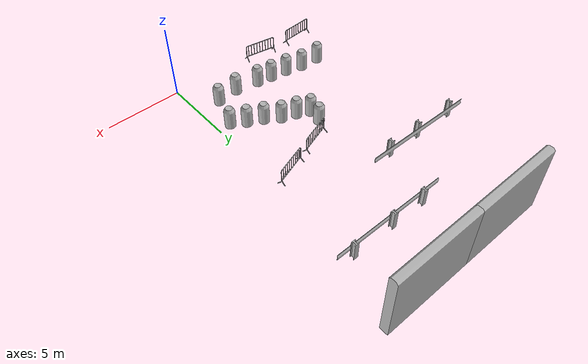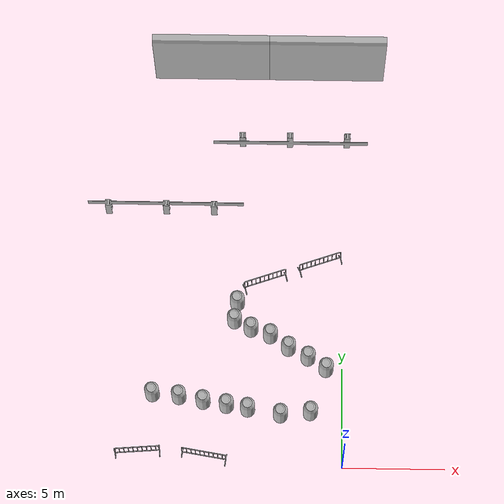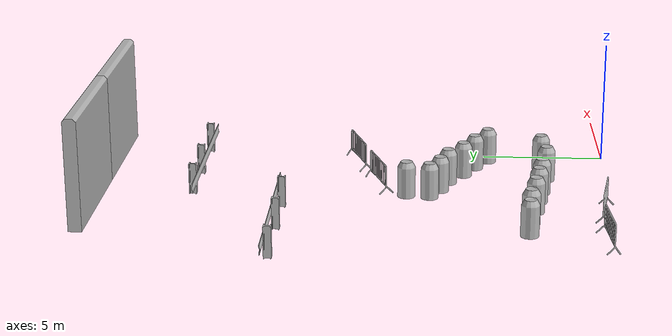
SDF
<sdf version="1.7">
 <world name="default">
  <model name="aws_robomaker_racetrack_CrashworthBucket_01_00">
   <frame name="aws_CrashworthBucket_01::__model__" attached_to="aws_CrashworthBucket_01::body">
    <pose relative_to="__model__">0 0 0 0 -0 0</pose>
   </frame>
   <link name="aws_CrashworthBucket_01::body">
    <pose relative_to="aws_CrashworthBucket_01::__model__">0 0 0 0 -0 0</pose>
    <inertial>
     <mass>5</mass>
     <inertia><ixx>1</ixx><ixy>0</ixy><ixz>0</ixz><iyy>1</iyy><iyz>0</iyz><izz>1</izz></inertia>
    </inertial>
    <visual name="visual">
     <geometry>
      <mesh>
       <uri>file://models/aws_robomaker_racetrack_CrashworthBucket_01/meshes/aws_CrashworthBucket_01_visual.DAE</uri>
      </mesh>
     </geometry>
     <material><shader type="pixel"><normal_map>__default__</normal_map></shader></material>
     <meta><layer>0</layer></meta>
    </visual>
    <collision name="collision_0">
     <geometry>
      <mesh>
       <uri>file://models/aws_robomaker_racetrack_CrashworthBucket_01/meshes/aws_CrashworthBucket_01_collision.DAE</uri>
       <scale>1 1 1</scale>
      </mesh>
     </geometry>
     <surface>
      <friction>
       <ode><mu>1</mu><mu2>1</mu2><fdir1>0 0 0</fdir1><slip1>0</slip1><slip2>0</slip2></ode>
       <torsional>
        <coefficient>1</coefficient>
        <patch_radius>0</patch_radius>
        <surface_radius>0</surface_radius>
        <use_patch_radius>1</use_patch_radius>
        <ode><slip>0</slip></ode>
       </torsional>
      </friction>
      <bounce><restitution_coefficient>0</restitution_coefficient><threshold>1e+06</threshold></bounce>
      <contact>
       <collide_without_contact>0</collide_without_contact>
       <collide_without_contact_bitmask>1</collide_without_contact_bitmask>
       <collide_bitmask>1</collide_bitmask>
       <ode>
        <soft_cfm>0</soft_cfm>
        <soft_erp>0.2</soft_erp>
        <kp>1e+13</kp>
        <kd>1</kd>
        <max_vel>0.01</max_vel>
        <min_depth>0</min_depth>
       </ode>
       <bullet>
        <split_impulse>1</split_impulse>
        <split_impulse_penetration_threshold>-0.01</split_impulse_penetration_threshold>
        <soft_cfm>0</soft_cfm>
        <soft_erp>0.2</soft_erp>
        <kp>1e+13</kp>
        <kd>1</kd>
       </bullet>
      </contact>
     </surface>
    </collision>
   </link>
   <static>1</static>
   <pose>-1.69098 5.45143 0.054 0 -0 0</pose>
  </model>
  <model name="aws_robomaker_racetrack_CrashworthBucket_01_01">
   <frame name="aws_CrashworthBucket_01::__model__" attached_to="aws_CrashworthBucket_01::body">
    <pose relative_to="__model__">0 0 0 0 -0 0</pose>
   </frame>
   <link name="aws_CrashworthBucket_01::body">
    <pose relative_to="aws_CrashworthBucket_01::__model__">0 0 0 0 -0 0</pose>
    <inertial>
     <mass>5</mass>
     <inertia><ixx>1</ixx><ixy>0</ixy><ixz>0</ixz><iyy>1</iyy><iyz>0</iyz><izz>1</izz></inertia>
    </inertial>
    <visual name="visual">
     <geometry>
      <mesh>
       <uri>file://models/aws_robomaker_racetrack_CrashworthBucket_01/meshes/aws_CrashworthBucket_01_visual.DAE</uri>
      </mesh>
     </geometry>
     <material><shader type="pixel"><normal_map>__default__</normal_map></shader></material>
     <meta><layer>0</layer></meta>
    </visual>
    <collision name="collision_0">
     <geometry>
      <mesh>
       <uri>file://models/aws_robomaker_racetrack_CrashworthBucket_01/meshes/aws_CrashworthBucket_01_collision.DAE</uri>
       <scale>1 1 1</scale>
      </mesh>
     </geometry>
     <surface>
      <friction>
       <ode><mu>1</mu><mu2>1</mu2><fdir1>0 0 0</fdir1><slip1>0</slip1><slip2>0</slip2></ode>
       <torsional>
        <coefficient>1</coefficient>
        <patch_radius>0</patch_radius>
        <surface_radius>0</surface_radius>
        <use_patch_radius>1</use_patch_radius>
        <ode><slip>0</slip></ode>
       </torsional>
      </friction>
      <bounce><restitution_coefficient>0</restitution_coefficient><threshold>1e+06</threshold></bounce>
      <contact>
       <collide_without_contact>0</collide_without_contact>
       <collide_without_contact_bitmask>1</collide_without_contact_bitmask>
       <collide_bitmask>1</collide_bitmask>
       <ode>
        <soft_cfm>0</soft_cfm>
        <soft_erp>0.2</soft_erp>
        <kp>1e+13</kp>
        <kd>1</kd>
        <max_vel>0.01</max_vel>
        <min_depth>0</min_depth>
       </ode>
       <bullet>
        <split_impulse>1</split_impulse>
        <split_impulse_penetration_threshold>-0.01</split_impulse_penetration_threshold>
        <soft_cfm>0</soft_cfm>
        <soft_erp>0.2</soft_erp>
        <kp>1e+13</kp>
        <kd>1</kd>
       </bullet>
      </contact>
     </surface>
    </collision>
   </link>
   <static>1</static>
   <pose>-2.65666 5.94023 0.054 0 -0 0</pose>
  </model>
  <model name="aws_robomaker_racetrack_CrashworthBucket_01_02">
   <frame name="aws_CrashworthBucket_01::__model__" attached_to="aws_CrashworthBucket_01::body">
    <pose relative_to="__model__">0 0 0 0 -0 0</pose>
   </frame>
   <link name="aws_CrashworthBucket_01::body">
    <pose relative_to="aws_CrashworthBucket_01::__model__">0 0 0 0 -0 0</pose>
    <inertial>
     <mass>5</mass>
     <inertia><ixx>1</ixx><ixy>0</ixy><ixz>0</ixz><iyy>1</iyy><iyz>0</iyz><izz>1</izz></inertia>
    </inertial>
    <visual name="visual">
     <geometry>
      <mesh>
       <uri>file://models/aws_robomaker_racetrack_CrashworthBucket_01/meshes/aws_CrashworthBucket_01_visual.DAE</uri>
      </mesh>
     </geometry>
     <material><shader type="pixel"><normal_map>__default__</normal_map></shader></material>
     <meta><layer>0</layer></meta>
    </visual>
    <collision name="collision_0">
     <geometry>
      <mesh>
       <uri>file://models/aws_robomaker_racetrack_CrashworthBucket_01/meshes/aws_CrashworthBucket_01_collision.DAE</uri>
       <scale>1 1 1</scale>
      </mesh>
     </geometry>
     <surface>
      <friction>
       <ode><mu>1</mu><mu2>1</mu2><fdir1>0 0 0</fdir1><slip1>0</slip1><slip2>0</slip2></ode>
       <torsional>
        <coefficient>1</coefficient>
        <patch_radius>0</patch_radius>
        <surface_radius>0</surface_radius>
        <use_patch_radius>1</use_patch_radius>
        <ode><slip>0</slip></ode>
       </torsional>
      </friction>
      <bounce><restitution_coefficient>0</restitution_coefficient><threshold>1e+06</threshold></bounce>
      <contact>
       <collide_without_contact>0</collide_without_contact>
       <collide_without_contact_bitmask>1</collide_without_contact_bitmask>
       <collide_bitmask>1</collide_bitmask>
       <ode>
        <soft_cfm>0</soft_cfm>
        <soft_erp>0.2</soft_erp>
        <kp>1e+13</kp>
        <kd>1</kd>
        <max_vel>0.01</max_vel>
        <min_depth>0</min_depth>
       </ode>
       <bullet>
        <split_impulse>1</split_impulse>
        <split_impulse_penetration_threshold>-0.01</split_impulse_penetration_threshold>
        <soft_cfm>0</soft_cfm>
        <soft_erp>0.2</soft_erp>
        <kp>1e+13</kp>
        <kd>1</kd>
       </bullet>
      </contact>
     </surface>
    </collision>
   </link>
   <static>1</static>
   <pose>-6.79958 3.18138 0.054 0 -0 0</pose>
  </model>
  <model name="aws_robomaker_racetrack_CrashworthBucket_01_21">
   <frame name="aws_CrashworthBucket_01::__model__" attached_to="aws_CrashworthBucket_01::body">
    <pose relative_to="__model__">0 0 0 0 -0 0</pose>
   </frame>
   <link name="aws_CrashworthBucket_01::body">
    <pose relative_to="aws_CrashworthBucket_01::__model__">0 0 0 0 -0 0</pose>
    <inertial>
     <mass>5</mass>
     <inertia><ixx>1</ixx><ixy>0</ixy><ixz>0</ixz><iyy>1</iyy><iyz>0</iyz><izz>1</izz></inertia>
    </inertial>
    <visual name="visual">
     <geometry>
      <mesh>
       <uri>file://models/aws_robomaker_racetrack_CrashworthBucket_01/meshes/aws_CrashworthBucket_01_visual.DAE</uri>
      </mesh>
     </geometry>
     <material><shader type="pixel"><normal_map>__default__</normal_map></shader></material>
     <meta><layer>0</layer></meta>
    </visual>
    <collision name="collision_0">
     <geometry>
      <mesh>
       <uri>file://models/aws_robomaker_racetrack_CrashworthBucket_01/meshes/aws_CrashworthBucket_01_collision.DAE</uri>
       <scale>1 1 1</scale>
      </mesh>
     </geometry>
     <surface>
      <friction>
       <ode><mu>1</mu><mu2>1</mu2><fdir1>0 0 0</fdir1><slip1>0</slip1><slip2>0</slip2></ode>
       <torsional>
        <coefficient>1</coefficient>
        <patch_radius>0</patch_radius>
        <surface_radius>0</surface_radius>
        <use_patch_radius>1</use_patch_radius>
        <ode><slip>0</slip></ode>
       </torsional>
      </friction>
      <bounce><restitution_coefficient>0</restitution_coefficient><threshold>1e+06</threshold></bounce>
      <contact>
       <collide_without_contact>0</collide_without_contact>
       <collide_without_contact_bitmask>1</collide_without_contact_bitmask>
       <collide_bitmask>1</collide_bitmask>
       <ode>
        <soft_cfm>0</soft_cfm>
        <soft_erp>0.2</soft_erp>
        <kp>1e+13</kp>
        <kd>1</kd>
        <max_vel>0.01</max_vel>
        <min_depth>0</min_depth>
       </ode>
       <bullet>
        <split_impulse>1</split_impulse>
        <split_impulse_penetration_threshold>-0.01</split_impulse_penetration_threshold>
        <soft_cfm>0</soft_cfm>
        <soft_erp>0.2</soft_erp>
        <kp>1e+13</kp>
        <kd>1</kd>
       </bullet>
      </contact>
     </surface>
    </collision>
   </link>
   <static>1</static>
   <pose>-4.61418 2.82739 0.054 0 -0 0</pose>
  </model>
  <model name="aws_robomaker_racetrack_CrashworthBucket_01_24">
   <frame name="aws_CrashworthBucket_01::__model__" attached_to="aws_CrashworthBucket_01::body">
    <pose relative_to="__model__">0 0 0 0 -0 0</pose>
   </frame>
   <link name="aws_CrashworthBucket_01::body">
    <pose relative_to="aws_CrashworthBucket_01::__model__">0 0 0 0 -0 0</pose>
    <inertial>
     <mass>5</mass>
     <inertia><ixx>1</ixx><ixy>0</ixy><ixz>0</ixz><iyy>1</iyy><iyz>0</iyz><izz>1</izz></inertia>
    </inertial>
    <visual name="visual">
     <geometry>
      <mesh>
       <uri>file://models/aws_robomaker_racetrack_CrashworthBucket_01/meshes/aws_CrashworthBucket_01_visual.DAE</uri>
      </mesh>
     </geometry>
     <material><shader type="pixel"><normal_map>__default__</normal_map></shader></material>
     <meta><layer>0</layer></meta>
    </visual>
    <collision name="collision_0">
     <geometry>
      <mesh>
       <uri>file://models/aws_robomaker_racetrack_CrashworthBucket_01/meshes/aws_CrashworthBucket_01_collision.DAE</uri>
       <scale>1 1 1</scale>
      </mesh>
     </geometry>
     <surface>
      <friction>
       <ode><mu>1</mu><mu2>1</mu2><fdir1>0 0 0</fdir1><slip1>0</slip1><slip2>0</slip2></ode>
       <torsional>
        <coefficient>1</coefficient>
        <patch_radius>0</patch_radius>
        <surface_radius>0</surface_radius>
        <use_patch_radius>1</use_patch_radius>
        <ode><slip>0</slip></ode>
       </torsional>
      </friction>
      <bounce><restitution_coefficient>0</restitution_coefficient><threshold>1e+06</threshold></bounce>
      <contact>
       <collide_without_contact>0</collide_without_contact>
       <collide_without_contact_bitmask>1</collide_without_contact_bitmask>
       <collide_bitmask>1</collide_bitmask>
       <ode>
        <soft_cfm>0</soft_cfm>
        <soft_erp>0.2</soft_erp>
        <kp>1e+13</kp>
        <kd>1</kd>
        <max_vel>0.01</max_vel>
        <min_depth>0</min_depth>
       </ode>
       <bullet>
        <split_impulse>1</split_impulse>
        <split_impulse_penetration_threshold>-0.01</split_impulse_penetration_threshold>
        <soft_cfm>0</soft_cfm>
        <soft_erp>0.2</soft_erp>
        <kp>1e+13</kp>
        <kd>1</kd>
       </bullet>
      </contact>
     </surface>
    </collision>
   </link>
   <static>1</static>
   <pose>-7.98711 3.42263 0 0 -0 0</pose>
  </model>
  <model name="aws_robomaker_racetrack_CrashworthBucket_01_50">
   <frame name="aws_CrashworthBucket_01::__model__" attached_to="aws_CrashworthBucket_01::body">
    <pose relative_to="__model__">0 0 0 0 -0 0</pose>
   </frame>
   <link name="aws_CrashworthBucket_01::body">
    <pose relative_to="aws_CrashworthBucket_01::__model__">0 0 0 0 -0 0</pose>
    <inertial>
     <mass>5</mass>
     <inertia><ixx>1</ixx><ixy>0</ixy><ixz>0</ixz><iyy>1</iyy><iyz>0</iyz><izz>1</izz></inertia>
    </inertial>
    <visual name="visual">
     <geometry>
      <mesh>
       <uri>file://models/aws_robomaker_racetrack_CrashworthBucket_01/meshes/aws_CrashworthBucket_01_visual.DAE</uri>
      </mesh>
     </geometry>
     <material><shader type="pixel"><normal_map>__default__</normal_map></shader></material>
     <meta><layer>0</layer></meta>
    </visual>
    <collision name="collision_0">
     <geometry>
      <mesh>
       <uri>file://models/aws_robomaker_racetrack_CrashworthBucket_01/meshes/aws_CrashworthBucket_01_collision.DAE</uri>
       <scale>1 1 1</scale>
      </mesh>
     </geometry>
     <surface>
      <friction>
       <ode><mu>1</mu><mu2>1</mu2><fdir1>0 0 0</fdir1><slip1>0</slip1><slip2>0</slip2></ode>
       <torsional>
        <coefficient>1</coefficient>
        <patch_radius>0</patch_radius>
        <surface_radius>0</surface_radius>
        <use_patch_radius>1</use_patch_radius>
        <ode><slip>0</slip></ode>
       </torsional>
      </friction>
      <bounce><restitution_coefficient>0</restitution_coefficient><threshold>1e+06</threshold></bounce>
      <contact>
       <collide_without_contact>0</collide_without_contact>
       <collide_without_contact_bitmask>1</collide_without_contact_bitmask>
       <collide_bitmask>1</collide_bitmask>
       <ode>
        <soft_cfm>0</soft_cfm>
        <soft_erp>0.2</soft_erp>
        <kp>1e+13</kp>
        <kd>1</kd>
        <max_vel>0.01</max_vel>
        <min_depth>0</min_depth>
       </ode>
       <bullet>
        <split_impulse>1</split_impulse>
        <split_impulse_penetration_threshold>-0.01</split_impulse_penetration_threshold>
        <soft_cfm>0</soft_cfm>
        <soft_erp>0.2</soft_erp>
        <kp>1e+13</kp>
        <kd>1</kd>
       </bullet>
      </contact>
     </surface>
    </collision>
   </link>
   <static>1</static>
   <pose>-3.56077 6.57141 0.054 0 -0 0</pose>
  </model>
  <model name="aws_robomaker_racetrack_CrashworthBucket_01_52">
   <frame name="aws_CrashworthBucket_01::__model__" attached_to="aws_CrashworthBucket_01::body">
    <pose relative_to="__model__">0 0 0 0 -0 0</pose>
   </frame>
   <link name="aws_CrashworthBucket_01::body">
    <pose relative_to="aws_CrashworthBucket_01::__model__">0 0 0 0 -0 0</pose>
    <inertial>
     <mass>5</mass>
     <inertia><ixx>1</ixx><ixy>0</ixy><ixz>0</ixz><iyy>1</iyy><iyz>0</iyz><izz>1</izz></inertia>
    </inertial>
    <visual name="visual">
     <geometry>
      <mesh>
       <uri>file://models/aws_robomaker_racetrack_CrashworthBucket_01/meshes/aws_CrashworthBucket_01_visual.DAE</uri>
      </mesh>
     </geometry>
     <material><shader type="pixel"><normal_map>__default__</normal_map></shader></material>
     <meta><layer>0</layer></meta>
    </visual>
    <collision name="collision_0">
     <geometry>
      <mesh>
       <uri>file://models/aws_robomaker_racetrack_CrashworthBucket_01/meshes/aws_CrashworthBucket_01_collision.DAE</uri>
       <scale>1 1 1</scale>
      </mesh>
     </geometry>
     <surface>
      <friction>
       <ode><mu>1</mu><mu2>1</mu2><fdir1>0 0 0</fdir1><slip1>0</slip1><slip2>0</slip2></ode>
       <torsional>
        <coefficient>1</coefficient>
        <patch_radius>0</patch_radius>
        <surface_radius>0</surface_radius>
        <use_patch_radius>1</use_patch_radius>
        <ode><slip>0</slip></ode>
       </torsional>
      </friction>
      <bounce><restitution_coefficient>0</restitution_coefficient><threshold>1e+06</threshold></bounce>
      <contact>
       <collide_without_contact>0</collide_without_contact>
       <collide_without_contact_bitmask>1</collide_without_contact_bitmask>
       <collide_bitmask>1</collide_bitmask>
       <ode>
        <soft_cfm>0</soft_cfm>
        <soft_erp>0.2</soft_erp>
        <kp>1e+13</kp>
        <kd>1</kd>
        <max_vel>0.01</max_vel>
        <min_depth>0</min_depth>
       </ode>
       <bullet>
        <split_impulse>1</split_impulse>
        <split_impulse_penetration_threshold>-0.01</split_impulse_penetration_threshold>
        <soft_cfm>0</soft_cfm>
        <soft_erp>0.2</soft_erp>
        <kp>1e+13</kp>
        <kd>1</kd>
       </bullet>
      </contact>
     </surface>
    </collision>
   </link>
   <static>1</static>
   <pose>-0.803385 4.88656 0.054 0 -0 0</pose>
  </model>
  <model name="aws_robomaker_racetrack_CrashworthBucket_01_55">
   <frame name="aws_CrashworthBucket_01::__model__" attached_to="aws_CrashworthBucket_01::body">
    <pose relative_to="__model__">0 0 0 0 -0 0</pose>
   </frame>
   <link name="aws_CrashworthBucket_01::body">
    <pose relative_to="aws_CrashworthBucket_01::__model__">0 0 0 0 -0 0</pose>
    <inertial>
     <mass>5</mass>
     <inertia><ixx>1</ixx><ixy>0</ixy><ixz>0</ixz><iyy>1</iyy><iyz>0</iyz><izz>1</izz></inertia>
    </inertial>
    <visual name="visual">
     <geometry>
      <mesh>
       <uri>file://models/aws_robomaker_racetrack_CrashworthBucket_01/meshes/aws_CrashworthBucket_01_visual.DAE</uri>
      </mesh>
     </geometry>
     <material><shader type="pixel"><normal_map>__default__</normal_map></shader></material>
     <meta><layer>0</layer></meta>
    </visual>
    <collision name="collision_0">
     <geometry>
      <mesh>
       <uri>file://models/aws_robomaker_racetrack_CrashworthBucket_01/meshes/aws_CrashworthBucket_01_collision.DAE</uri>
       <scale>1 1 1</scale>
      </mesh>
     </geometry>
     <surface>
      <friction>
       <ode><mu>1</mu><mu2>1</mu2><fdir1>0 0 0</fdir1><slip1>0</slip1><slip2>0</slip2></ode>
       <torsional>
        <coefficient>1</coefficient>
        <patch_radius>0</patch_radius>
        <surface_radius>0</surface_radius>
        <use_patch_radius>1</use_patch_radius>
        <ode><slip>0</slip></ode>
       </torsional>
      </friction>
      <bounce><restitution_coefficient>0</restitution_coefficient><threshold>1e+06</threshold></bounce>
      <contact>
       <collide_without_contact>0</collide_without_contact>
       <collide_without_contact_bitmask>1</collide_without_contact_bitmask>
       <collide_bitmask>1</collide_bitmask>
       <ode>
        <soft_cfm>0</soft_cfm>
        <soft_erp>0.2</soft_erp>
        <kp>1e+13</kp>
        <kd>1</kd>
        <max_vel>0.01</max_vel>
        <min_depth>0</min_depth>
       </ode>
       <bullet>
        <split_impulse>1</split_impulse>
        <split_impulse_penetration_threshold>-0.01</split_impulse_penetration_threshold>
        <soft_cfm>0</soft_cfm>
        <soft_erp>0.2</soft_erp>
        <kp>1e+13</kp>
        <kd>1</kd>
       </bullet>
      </contact>
     </surface>
    </collision>
   </link>
   <static>1</static>
   <pose>-1.54944 2.68917 0.054 0 -0 0</pose>
  </model>
  <model name="aws_robomaker_racetrack_CrashworthBucket_01_57">
   <frame name="aws_CrashworthBucket_01::__model__" attached_to="aws_CrashworthBucket_01::body">
    <pose relative_to="__model__">0 0 0 0 -0 0</pose>
   </frame>
   <link name="aws_CrashworthBucket_01::body">
    <pose relative_to="aws_CrashworthBucket_01::__model__">0 0 0 0 -0 0</pose>
    <inertial>
     <mass>5</mass>
     <inertia><ixx>1</ixx><ixy>0</ixy><ixz>0</ixz><iyy>1</iyy><iyz>0</iyz><izz>1</izz></inertia>
    </inertial>
    <visual name="visual">
     <geometry>
      <mesh>
       <uri>file://models/aws_robomaker_racetrack_CrashworthBucket_01/meshes/aws_CrashworthBucket_01_visual.DAE</uri>
      </mesh>
     </geometry>
     <material><shader type="pixel"><normal_map>__default__</normal_map></shader></material>
     <meta><layer>0</layer></meta>
    </visual>
    <collision name="collision_0">
     <geometry>
      <mesh>
       <uri>file://models/aws_robomaker_racetrack_CrashworthBucket_01/meshes/aws_CrashworthBucket_01_collision.DAE</uri>
       <scale>1 1 1</scale>
      </mesh>
     </geometry>
     <surface>
      <friction>
       <ode><mu>1</mu><mu2>1</mu2><fdir1>0 0 0</fdir1><slip1>0</slip1><slip2>0</slip2></ode>
       <torsional>
        <coefficient>1</coefficient>
        <patch_radius>0</patch_radius>
        <surface_radius>0</surface_radius>
        <use_patch_radius>1</use_patch_radius>
        <ode><slip>0</slip></ode>
       </torsional>
      </friction>
      <bounce><restitution_coefficient>0</restitution_coefficient><threshold>1e+06</threshold></bounce>
      <contact>
       <collide_without_contact>0</collide_without_contact>
       <collide_without_contact_bitmask>1</collide_without_contact_bitmask>
       <collide_bitmask>1</collide_bitmask>
       <ode>
        <soft_cfm>0</soft_cfm>
        <soft_erp>0.2</soft_erp>
        <kp>1e+13</kp>
        <kd>1</kd>
        <max_vel>0.01</max_vel>
        <min_depth>0</min_depth>
       </ode>
       <bullet>
        <split_impulse>1</split_impulse>
        <split_impulse_penetration_threshold>-0.01</split_impulse_penetration_threshold>
        <soft_cfm>0</soft_cfm>
        <soft_erp>0.2</soft_erp>
        <kp>1e+13</kp>
        <kd>1</kd>
       </bullet>
      </contact>
     </surface>
    </collision>
   </link>
   <static>1</static>
   <pose>-4.51758 6.89821 0.054 0 -0 0</pose>
  </model>
  <model name="aws_robomaker_racetrack_CrashworthBucket_01_58">
   <frame name="aws_CrashworthBucket_01::__model__" attached_to="aws_CrashworthBucket_01::body">
    <pose relative_to="__model__">0 0 0 0 -0 0</pose>
   </frame>
   <link name="aws_CrashworthBucket_01::body">
    <pose relative_to="aws_CrashworthBucket_01::__model__">0 0 0 0 -0 0</pose>
    <inertial>
     <mass>5</mass>
     <inertia><ixx>1</ixx><ixy>0</ixy><ixz>0</ixz><iyy>1</iyy><iyz>0</iyz><izz>1</izz></inertia>
    </inertial>
    <visual name="visual">
     <geometry>
      <mesh>
       <uri>file://models/aws_robomaker_racetrack_CrashworthBucket_01/meshes/aws_CrashworthBucket_01_visual.DAE</uri>
      </mesh>
     </geometry>
     <material><shader type="pixel"><normal_map>__default__</normal_map></shader></material>
     <meta><layer>0</layer></meta>
    </visual>
    <collision name="collision_0">
     <geometry>
      <mesh>
       <uri>file://models/aws_robomaker_racetrack_CrashworthBucket_01/meshes/aws_CrashworthBucket_01_collision.DAE</uri>
       <scale>1 1 1</scale>
      </mesh>
     </geometry>
     <surface>
      <friction>
       <ode><mu>1</mu><mu2>1</mu2><fdir1>0 0 0</fdir1><slip1>0</slip1><slip2>0</slip2></ode>
       <torsional>
        <coefficient>1</coefficient>
        <patch_radius>0</patch_radius>
        <surface_radius>0</surface_radius>
        <use_patch_radius>1</use_patch_radius>
        <ode><slip>0</slip></ode>
       </torsional>
      </friction>
      <bounce><restitution_coefficient>0</restitution_coefficient><threshold>1e+06</threshold></bounce>
      <contact>
       <collide_without_contact>0</collide_without_contact>
       <collide_without_contact_bitmask>1</collide_without_contact_bitmask>
       <collide_bitmask>1</collide_bitmask>
       <ode>
        <soft_cfm>0</soft_cfm>
        <soft_erp>0.2</soft_erp>
        <kp>1e+13</kp>
        <kd>1</kd>
        <max_vel>0.01</max_vel>
        <min_depth>0</min_depth>
       </ode>
       <bullet>
        <split_impulse>1</split_impulse>
        <split_impulse_penetration_threshold>-0.01</split_impulse_penetration_threshold>
        <soft_cfm>0</soft_cfm>
        <soft_erp>0.2</soft_erp>
        <kp>1e+13</kp>
        <kd>1</kd>
       </bullet>
      </contact>
     </surface>
    </collision>
   </link>
   <static>1</static>
   <pose>-5.3385 7.31422 0.054 0 -0 0</pose>
  </model>
  <model name="aws_robomaker_racetrack_CrashworthBucket_01_59">
   <frame name="aws_CrashworthBucket_01::__model__" attached_to="aws_CrashworthBucket_01::body">
    <pose relative_to="__model__">0 0 0 0 -0 0</pose>
   </frame>
   <link name="aws_CrashworthBucket_01::body">
    <pose relative_to="aws_CrashworthBucket_01::__model__">0 0 0 0 -0 0</pose>
    <inertial>
     <mass>5</mass>
     <inertia><ixx>1</ixx><ixy>0</ixy><ixz>0</ixz><iyy>1</iyy><iyz>0</iyz><izz>1</izz></inertia>
    </inertial>
    <visual name="visual">
     <geometry>
      <mesh>
       <uri>file://models/aws_robomaker_racetrack_CrashworthBucket_01/meshes/aws_CrashworthBucket_01_visual.DAE</uri>
      </mesh>
     </geometry>
     <material><shader type="pixel"><normal_map>__default__</normal_map></shader></material>
     <meta><layer>0</layer></meta>
    </visual>
    <collision name="collision_0">
     <geometry>
      <mesh>
       <uri>file://models/aws_robomaker_racetrack_CrashworthBucket_01/meshes/aws_CrashworthBucket_01_collision.DAE</uri>
       <scale>1 1 1</scale>
      </mesh>
     </geometry>
     <surface>
      <friction>
       <ode><mu>1</mu><mu2>1</mu2><fdir1>0 0 0</fdir1><slip1>0</slip1><slip2>0</slip2></ode>
       <torsional>
        <coefficient>1</coefficient>
        <patch_radius>0</patch_radius>
        <surface_radius>0</surface_radius>
        <use_patch_radius>1</use_patch_radius>
        <ode><slip>0</slip></ode>
       </torsional>
      </friction>
      <bounce><restitution_coefficient>0</restitution_coefficient><threshold>1e+06</threshold></bounce>
      <contact>
       <collide_without_contact>0</collide_without_contact>
       <collide_without_contact_bitmask>1</collide_without_contact_bitmask>
       <collide_bitmask>1</collide_bitmask>
       <ode>
        <soft_cfm>0</soft_cfm>
        <soft_erp>0.2</soft_erp>
        <kp>1e+13</kp>
        <kd>1</kd>
        <max_vel>0.01</max_vel>
        <min_depth>0</min_depth>
       </ode>
       <bullet>
        <split_impulse>1</split_impulse>
        <split_impulse_penetration_threshold>-0.01</split_impulse_penetration_threshold>
        <soft_cfm>0</soft_cfm>
        <soft_erp>0.2</soft_erp>
        <kp>1e+13</kp>
        <kd>1</kd>
       </bullet>
      </contact>
     </surface>
    </collision>
   </link>
   <static>1</static>
   <pose>-5.21394 8.24339 0.054 0 -0 0</pose>
  </model>
  <model name="aws_robomaker_racetrack_CrashworthBucket_01_66">
   <frame name="aws_CrashworthBucket_01::__model__" attached_to="aws_CrashworthBucket_01::body">
    <pose relative_to="__model__">0 0 0 0 -0 0</pose>
   </frame>
   <link name="aws_CrashworthBucket_01::body">
    <pose relative_to="aws_CrashworthBucket_01::__model__">0 0 0 0 -0 0</pose>
    <inertial>
     <mass>5</mass>
     <inertia><ixx>1</ixx><ixy>0</ixy><ixz>0</ixz><iyy>1</iyy><iyz>0</iyz><izz>1</izz></inertia>
    </inertial>
    <visual name="visual">
     <geometry>
      <mesh>
       <uri>file://models/aws_robomaker_racetrack_CrashworthBucket_01/meshes/aws_CrashworthBucket_01_visual.DAE</uri>
      </mesh>
     </geometry>
     <material><shader type="pixel"><normal_map>__default__</normal_map></shader></material>
     <meta><layer>0</layer></meta>
    </visual>
    <collision name="collision_0">
     <geometry>
      <mesh>
       <uri>file://models/aws_robomaker_racetrack_CrashworthBucket_01/meshes/aws_CrashworthBucket_01_collision.DAE</uri>
       <scale>1 1 1</scale>
      </mesh>
     </geometry>
     <surface>
      <friction>
       <ode><mu>1</mu><mu2>1</mu2><fdir1>0 0 0</fdir1><slip1>0</slip1><slip2>0</slip2></ode>
       <torsional>
        <coefficient>1</coefficient>
        <patch_radius>0</patch_radius>
        <surface_radius>0</surface_radius>
        <use_patch_radius>1</use_patch_radius>
        <ode><slip>0</slip></ode>
       </torsional>
      </friction>
      <bounce><restitution_coefficient>0</restitution_coefficient><threshold>1e+06</threshold></bounce>
      <contact>
       <collide_without_contact>0</collide_without_contact>
       <collide_without_contact_bitmask>1</collide_without_contact_bitmask>
       <collide_bitmask>1</collide_bitmask>
       <ode>
        <soft_cfm>0</soft_cfm>
        <soft_erp>0.2</soft_erp>
        <kp>1e+13</kp>
        <kd>1</kd>
        <max_vel>0.01</max_vel>
        <min_depth>0</min_depth>
       </ode>
       <bullet>
        <split_impulse>1</split_impulse>
        <split_impulse_penetration_threshold>-0.01</split_impulse_penetration_threshold>
        <soft_cfm>0</soft_cfm>
        <soft_erp>0.2</soft_erp>
        <kp>1e+13</kp>
        <kd>1</kd>
       </bullet>
      </contact>
     </surface>
    </collision>
   </link>
   <static>1</static>
   <pose>-5.6498 2.9963 0.054 0 -0 0</pose>
  </model>
  <model name="aws_robomaker_racetrack_CrashworthBucket_01_67">
   <frame name="aws_CrashworthBucket_01::__model__" attached_to="aws_CrashworthBucket_01::body">
    <pose relative_to="__model__">0 0 0 0 -0 0</pose>
   </frame>
   <link name="aws_CrashworthBucket_01::body">
    <pose relative_to="aws_CrashworthBucket_01::__model__">0 0 0 0 -0 0</pose>
    <inertial>
     <mass>5</mass>
     <inertia><ixx>1</ixx><ixy>0</ixy><ixz>0</ixz><iyy>1</iyy><iyz>0</iyz><izz>1</izz></inertia>
    </inertial>
    <visual name="visual">
     <geometry>
      <mesh>
       <uri>file://models/aws_robomaker_racetrack_CrashworthBucket_01/meshes/aws_CrashworthBucket_01_visual.DAE</uri>
      </mesh>
     </geometry>
     <material><shader type="pixel"><normal_map>__default__</normal_map></shader></material>
     <meta><layer>0</layer></meta>
    </visual>
    <collision name="collision_0">
     <geometry>
      <mesh>
       <uri>file://models/aws_robomaker_racetrack_CrashworthBucket_01/meshes/aws_CrashworthBucket_01_collision.DAE</uri>
       <scale>1 1 1</scale>
      </mesh>
     </geometry>
     <surface>
      <friction>
       <ode><mu>1</mu><mu2>1</mu2><fdir1>0 0 0</fdir1><slip1>0</slip1><slip2>0</slip2></ode>
       <torsional>
        <coefficient>1</coefficient>
        <patch_radius>0</patch_radius>
        <surface_radius>0</surface_radius>
        <use_patch_radius>1</use_patch_radius>
        <ode><slip>0</slip></ode>
       </torsional>
      </friction>
      <bounce><restitution_coefficient>0</restitution_coefficient><threshold>1e+06</threshold></bounce>
      <contact>
       <collide_without_contact>0</collide_without_contact>
       <collide_without_contact_bitmask>1</collide_without_contact_bitmask>
       <collide_bitmask>1</collide_bitmask>
       <ode>
        <soft_cfm>0</soft_cfm>
        <soft_erp>0.2</soft_erp>
        <kp>1e+13</kp>
        <kd>1</kd>
        <max_vel>0.01</max_vel>
        <min_depth>0</min_depth>
       </ode>
       <bullet>
        <split_impulse>1</split_impulse>
        <split_impulse_penetration_threshold>-0.01</split_impulse_penetration_threshold>
        <soft_cfm>0</soft_cfm>
        <soft_erp>0.2</soft_erp>
        <kp>1e+13</kp>
        <kd>1</kd>
       </bullet>
      </contact>
     </surface>
    </collision>
   </link>
   <static>1</static>
   <pose>-9.28938 3.5334 0.054 0 -0 0</pose>
  </model>
  <model name="aws_robomaker_racetrack_CrashworthBucket_01_68">
   <frame name="aws_CrashworthBucket_01::__model__" attached_to="aws_CrashworthBucket_01::body">
    <pose relative_to="__model__">0 0 0 0 -0 0</pose>
   </frame>
   <link name="aws_CrashworthBucket_01::body">
    <pose relative_to="aws_CrashworthBucket_01::__model__">0 0 0 0 -0 0</pose>
    <inertial>
     <mass>5</mass>
     <inertia><ixx>1</ixx><ixy>0</ixy><ixz>0</ixz><iyy>1</iyy><iyz>0</iyz><izz>1</izz></inertia>
    </inertial>
    <visual name="visual">
     <geometry>
      <mesh>
       <uri>file://models/aws_robomaker_racetrack_CrashworthBucket_01/meshes/aws_CrashworthBucket_01_visual.DAE</uri>
      </mesh>
     </geometry>
     <material><shader type="pixel"><normal_map>__default__</normal_map></shader></material>
     <meta><layer>0</layer></meta>
    </visual>
    <collision name="collision_0">
     <geometry>
      <mesh>
       <uri>file://models/aws_robomaker_racetrack_CrashworthBucket_01/meshes/aws_CrashworthBucket_01_collision.DAE</uri>
       <scale>1 1 1</scale>
      </mesh>
     </geometry>
     <surface>
      <friction>
       <ode><mu>1</mu><mu2>1</mu2><fdir1>0 0 0</fdir1><slip1>0</slip1><slip2>0</slip2></ode>
       <torsional>
        <coefficient>1</coefficient>
        <patch_radius>0</patch_radius>
        <surface_radius>0</surface_radius>
        <use_patch_radius>1</use_patch_radius>
        <ode><slip>0</slip></ode>
       </torsional>
      </friction>
      <bounce><restitution_coefficient>0</restitution_coefficient><threshold>1e+06</threshold></bounce>
      <contact>
       <collide_without_contact>0</collide_without_contact>
       <collide_without_contact_bitmask>1</collide_without_contact_bitmask>
       <collide_bitmask>1</collide_bitmask>
       <ode>
        <soft_cfm>0</soft_cfm>
        <soft_erp>0.2</soft_erp>
        <kp>1e+13</kp>
        <kd>1</kd>
        <max_vel>0.01</max_vel>
        <min_depth>0</min_depth>
       </ode>
       <bullet>
        <split_impulse>1</split_impulse>
        <split_impulse_penetration_threshold>-0.01</split_impulse_penetration_threshold>
        <soft_cfm>0</soft_cfm>
        <soft_erp>0.2</soft_erp>
        <kp>1e+13</kp>
        <kd>1</kd>
       </bullet>
      </contact>
     </surface>
    </collision>
   </link>
   <static>1</static>
   <pose>-3.01302 2.55137 0.054 0 -0 0</pose>
  </model>
  <model name="aws_robomaker_racetrack_Fence_01_02">
   <frame name="aws_Fence_01::__model__" attached_to="aws_Fence_01::body">
    <pose relative_to="__model__">0 0 0 0 -0 0</pose>
   </frame>
   <link name="aws_Fence_01::body">
    <pose relative_to="aws_Fence_01::__model__">0 0 0 0 -0 0</pose>
    <inertial>
     <mass>5</mass>
     <inertia><ixx>1</ixx><ixy>0</ixy><ixz>0</ixz><iyy>1</iyy><iyz>0</iyz><izz>1</izz></inertia>
    </inertial>
    <visual name="visual">
     <geometry>
      <mesh><uri>file://models/aws_robomaker_racetrack_Fence_01/meshes/aws_Fence_01_visual.DAE</uri></mesh>
     </geometry>
     <material><shader type="pixel"><normal_map>__default__</normal_map></shader></material>
     <meta><layer>0</layer></meta>
    </visual>
    <collision name="collision_0">
     <geometry>
      <mesh>
       <uri>file://models/aws_robomaker_racetrack_Fence_01/meshes/aws_Fence_01_collision.DAE</uri>
       <scale>1 1 1</scale>
      </mesh>
     </geometry>
     <surface>
      <friction>
       <ode><mu>1</mu><mu2>1</mu2><fdir1>0 0 0</fdir1><slip1>0</slip1><slip2>0</slip2></ode>
       <torsional>
        <coefficient>1</coefficient>
        <patch_radius>0</patch_radius>
        <surface_radius>0</surface_radius>
        <use_patch_radius>1</use_patch_radius>
        <ode><slip>0</slip></ode>
       </torsional>
      </friction>
      <bounce><restitution_coefficient>0</restitution_coefficient><threshold>1e+06</threshold></bounce>
      <contact>
       <collide_without_contact>0</collide_without_contact>
       <collide_without_contact_bitmask>1</collide_without_contact_bitmask>
       <collide_bitmask>1</collide_bitmask>
       <ode>
        <soft_cfm>0</soft_cfm>
        <soft_erp>0.2</soft_erp>
        <kp>1e+13</kp>
        <kd>1</kd>
        <max_vel>0.01</max_vel>
        <min_depth>0</min_depth>
       </ode>
       <bullet>
        <split_impulse>1</split_impulse>
        <split_impulse_penetration_threshold>-0.01</split_impulse_penetration_threshold>
        <soft_cfm>0</soft_cfm>
        <soft_erp>0.2</soft_erp>
        <kp>1e+13</kp>
        <kd>1</kd>
       </bullet>
      </contact>
     </surface>
    </collision>
   </link>
   <static>1</static>
   <pose>-8.89723 13.1587 0 0 0 -1.57272</pose>
  </model>
  <model name="aws_robomaker_racetrack_Fence_01_14">
   <frame name="aws_Fence_01::__model__" attached_to="aws_Fence_01::body">
    <pose relative_to="__model__">0 0 0 0 -0 0</pose>
   </frame>
   <link name="aws_Fence_01::body">
    <pose relative_to="aws_Fence_01::__model__">0 0 0 0 -0 0</pose>
    <inertial>
     <mass>5</mass>
     <inertia><ixx>1</ixx><ixy>0</ixy><ixz>0</ixz><iyy>1</iyy><iyz>0</iyz><izz>1</izz></inertia>
    </inertial>
    <visual name="visual">
     <geometry>
      <mesh><uri>file://models/aws_robomaker_racetrack_Fence_01/meshes/aws_Fence_01_visual.DAE</uri></mesh>
     </geometry>
     <material><shader type="pixel"><normal_map>__default__</normal_map></shader></material>
     <meta><layer>0</layer></meta>
    </visual>
    <collision name="collision_0">
     <geometry>
      <mesh>
       <uri>file://models/aws_robomaker_racetrack_Fence_01/meshes/aws_Fence_01_collision.DAE</uri>
       <scale>1 1 1</scale>
      </mesh>
     </geometry>
     <surface>
      <friction>
       <ode><mu>1</mu><mu2>1</mu2><fdir1>0 0 0</fdir1><slip1>0</slip1><slip2>0</slip2></ode>
       <torsional>
        <coefficient>1</coefficient>
        <patch_radius>0</patch_radius>
        <surface_radius>0</surface_radius>
        <use_patch_radius>1</use_patch_radius>
        <ode><slip>0</slip></ode>
       </torsional>
      </friction>
      <bounce><restitution_coefficient>0</restitution_coefficient><threshold>1e+06</threshold></bounce>
      <contact>
       <collide_without_contact>0</collide_without_contact>
       <collide_without_contact_bitmask>1</collide_without_contact_bitmask>
       <collide_bitmask>1</collide_bitmask>
       <ode>
        <soft_cfm>0</soft_cfm>
        <soft_erp>0.2</soft_erp>
        <kp>1e+13</kp>
        <kd>1</kd>
        <max_vel>0.01</max_vel>
        <min_depth>0</min_depth>
       </ode>
       <bullet>
        <split_impulse>1</split_impulse>
        <split_impulse_penetration_threshold>-0.01</split_impulse_penetration_threshold>
        <soft_cfm>0</soft_cfm>
        <soft_erp>0.2</soft_erp>
        <kp>1e+13</kp>
        <kd>1</kd>
       </bullet>
      </contact>
     </surface>
    </collision>
   </link>
   <static>1</static>
   <pose>-2.67941 16.8189 0 0 -0 1.57158</pose>
  </model>
  <model name="aws_robomaker_racetrack_Fence_02_03">
   <frame name="aws_Fence_02::__model__" attached_to="aws_Fence_02::body">
    <pose relative_to="__model__">0 0 0 0 -0 0</pose>
   </frame>
   <link name="aws_Fence_02::body">
    <pose relative_to="aws_Fence_02::__model__">0 0 0 0 -0 0</pose>
    <inertial>
     <mass>5</mass>
     <inertia><ixx>9.6</ixx><ixy>0</ixy><ixz>0</ixz><iyy>8.2</iyy><iyz>0</iyz><izz>2.1</izz></inertia>
    </inertial>
    <visual name="visual">
     <geometry>
      <mesh><uri>file://models/aws_robomaker_racetrack_Fence_02/meshes/aws_Fence_02_visual.DAE</uri></mesh>
     </geometry>
     <material><shader type="pixel"><normal_map>__default__</normal_map></shader></material>
     <meta><layer>0</layer></meta>
    </visual>
    <collision name="collision_0">
     <geometry>
      <mesh>
       <uri>file://models/aws_robomaker_racetrack_Fence_02/meshes/aws_Fence_02_collision.DAE</uri>
       <scale>1 1 1</scale>
      </mesh>
     </geometry>
     <surface>
      <friction>
       <ode><mu>1</mu><mu2>1</mu2><fdir1>0 0 0</fdir1><slip1>0</slip1><slip2>0</slip2></ode>
       <torsional>
        <coefficient>1</coefficient>
        <patch_radius>0</patch_radius>
        <surface_radius>0</surface_radius>
        <use_patch_radius>1</use_patch_radius>
        <ode><slip>0</slip></ode>
       </torsional>
      </friction>
      <bounce><restitution_coefficient>0</restitution_coefficient><threshold>1e+06</threshold></bounce>
      <contact>
       <collide_without_contact>0</collide_without_contact>
       <collide_without_contact_bitmask>1</collide_without_contact_bitmask>
       <collide_bitmask>1</collide_bitmask>
      </contact>
     </surface>
    </collision>
   </link>
   <static>1</static>
   <pose>-6.69129 0.495608 0 0 0 -1.73608</pose>
  </model>
  <model name="aws_robomaker_racetrack_Fence_02_04">
   <frame name="aws_Fence_02::__model__" attached_to="aws_Fence_02::body">
    <pose relative_to="__model__">0 0 0 0 -0 0</pose>
   </frame>
   <link name="aws_Fence_02::body">
    <pose relative_to="aws_Fence_02::__model__">0 0 0 0 -0 0</pose>
    <inertial>
     <mass>5</mass>
     <inertia><ixx>9.6</ixx><ixy>0</ixy><ixz>0</ixz><iyy>8.2</iyy><iyz>0</iyz><izz>2.1</izz></inertia>
    </inertial>
    <visual name="visual">
     <geometry>
      <mesh><uri>file://models/aws_robomaker_racetrack_Fence_02/meshes/aws_Fence_02_visual.DAE</uri></mesh>
     </geometry>
     <material><shader type="pixel"><normal_map>__default__</normal_map></shader></material>
     <meta><layer>0</layer></meta>
    </visual>
    <collision name="collision_0">
     <geometry>
      <mesh>
       <uri>file://models/aws_robomaker_racetrack_Fence_02/meshes/aws_Fence_02_collision.DAE</uri>
       <scale>1 1 1</scale>
      </mesh>
     </geometry>
     <surface>
      <friction>
       <ode><mu>1</mu><mu2>1</mu2><fdir1>0 0 0</fdir1><slip1>0</slip1><slip2>0</slip2></ode>
       <torsional>
        <coefficient>1</coefficient>
        <patch_radius>0</patch_radius>
        <surface_radius>0</surface_radius>
        <use_patch_radius>1</use_patch_radius>
        <ode><slip>0</slip></ode>
       </torsional>
      </friction>
      <bounce><restitution_coefficient>0</restitution_coefficient><threshold>1e+06</threshold></bounce>
      <contact>
       <collide_without_contact>0</collide_without_contact>
       <collide_without_contact_bitmask>1</collide_without_contact_bitmask>
       <collide_bitmask>1</collide_bitmask>
      </contact>
     </surface>
    </collision>
   </link>
   <static>1</static>
   <pose>-9.93017 0.649415 0.054 0 0 -1.49474</pose>
  </model>
  <model name="aws_robomaker_racetrack_Fence_02_08">
   <frame name="aws_Fence_02::__model__" attached_to="aws_Fence_02::body">
    <pose relative_to="__model__">0 0 0 0 -0 0</pose>
   </frame>
   <link name="aws_Fence_02::body">
    <pose relative_to="aws_Fence_02::__model__">0 0 0 0 -0 0</pose>
    <inertial>
     <mass>5</mass>
     <inertia><ixx>9.6</ixx><ixy>0</ixy><ixz>0</ixz><iyy>8.2</iyy><iyz>0</iyz><izz>2.1</izz></inertia>
    </inertial>
    <visual name="visual">
     <geometry>
      <mesh><uri>file://models/aws_robomaker_racetrack_Fence_02/meshes/aws_Fence_02_visual.DAE</uri></mesh>
     </geometry>
     <material><shader type="pixel"><normal_map>__default__</normal_map></shader></material>
     <meta><layer>0</layer></meta>
    </visual>
    <collision name="collision_0">
     <geometry>
      <mesh>
       <uri>file://models/aws_robomaker_racetrack_Fence_02/meshes/aws_Fence_02_collision.DAE</uri>
       <scale>1 1 1</scale>
      </mesh>
     </geometry>
     <surface>
      <friction>
       <ode><mu>1</mu><mu2>1</mu2><fdir1>0 0 0</fdir1><slip1>0</slip1><slip2>0</slip2></ode>
       <torsional>
        <coefficient>1</coefficient>
        <patch_radius>0</patch_radius>
        <surface_radius>0</surface_radius>
        <use_patch_radius>1</use_patch_radius>
        <ode><slip>0</slip></ode>
       </torsional>
      </friction>
      <bounce><restitution_coefficient>0</restitution_coefficient><threshold>1e+06</threshold></bounce>
      <contact>
       <collide_without_contact>0</collide_without_contact>
       <collide_without_contact_bitmask>1</collide_without_contact_bitmask>
       <collide_bitmask>1</collide_bitmask>
      </contact>
     </surface>
    </collision>
   </link>
   <static>1</static>
   <pose>-1.13 10.3272 0 0 -0 1.90339</pose>
  </model>
  <model name="aws_robomaker_racetrack_Fence_02_09">
   <frame name="aws_Fence_02::__model__" attached_to="aws_Fence_02::body">
    <pose relative_to="__model__">0 0 0 0 -0 0</pose>
   </frame>
   <link name="aws_Fence_02::body">
    <pose relative_to="aws_Fence_02::__model__">0 0 0 0 -0 0</pose>
    <inertial>
     <mass>5</mass>
     <inertia><ixx>9.6</ixx><ixy>0</ixy><ixz>0</ixz><iyy>8.2</iyy><iyz>0</iyz><izz>2.1</izz></inertia>
    </inertial>
    <visual name="visual">
     <geometry>
      <mesh><uri>file://models/aws_robomaker_racetrack_Fence_02/meshes/aws_Fence_02_visual.DAE</uri></mesh>
     </geometry>
     <material><shader type="pixel"><normal_map>__default__</normal_map></shader></material>
     <meta><layer>0</layer></meta>
    </visual>
    <collision name="collision_0">
     <geometry>
      <mesh>
       <uri>file://models/aws_robomaker_racetrack_Fence_02/meshes/aws_Fence_02_collision.DAE</uri>
       <scale>1 1 1</scale>
      </mesh>
     </geometry>
     <surface>
      <friction>
       <ode><mu>1</mu><mu2>1</mu2><fdir1>0 0 0</fdir1><slip1>0</slip1><slip2>0</slip2></ode>
       <torsional>
        <coefficient>1</coefficient>
        <patch_radius>0</patch_radius>
        <surface_radius>0</surface_radius>
        <use_patch_radius>1</use_patch_radius>
        <ode><slip>0</slip></ode>
       </torsional>
      </friction>
      <bounce><restitution_coefficient>0</restitution_coefficient><threshold>1e+06</threshold></bounce>
      <contact>
       <collide_without_contact>0</collide_without_contact>
       <collide_without_contact_bitmask>1</collide_without_contact_bitmask>
       <collide_bitmask>1</collide_bitmask>
      </contact>
     </surface>
    </collision>
   </link>
   <static>1</static>
   <pose>-3.85384 9.39461 0 0 -0 1.90339</pose>
  </model>
  <model name="aws_robomaker_racetrack_Wall_01_02">
   <frame name="aws_Wall_01::__model__" attached_to="aws_Wall_01::body">
    <pose relative_to="__model__">0 0 0 0 -0 0</pose>
   </frame>
   <link name="aws_Wall_01::body">
    <pose relative_to="aws_Wall_01::__model__">0 0 0 0 -0 0</pose>
    <inertial>
     <mass>500</mass>
     <inertia><ixx>1</ixx><ixy>0</ixy><ixz>0</ixz><iyy>1</iyy><iyz>0</iyz><izz>1</izz></inertia>
    </inertial>
    <visual name="visual">
     <geometry>
      <mesh>
       <uri>file://models/aws_robomaker_racetrack_Wall_01/meshes/aws_Wall_01_visual.DAE</uri>
       <scale>2.59853 2.59853 2.59853</scale>
      </mesh>
     </geometry>
     <material><shader type="pixel"><normal_map>__default__</normal_map></shader></material>
     <meta><layer>1</layer></meta>
    </visual>
    <collision name="collision_0">
     <geometry>
      <mesh>
       <uri>file://models/aws_robomaker_racetrack_Wall_01/meshes/aws_Wall_01_collision.DAE</uri>
       <scale>2.59853 2.59853 2.59853</scale>
      </mesh>
     </geometry>
     <surface>
      <friction>
       <ode><mu>1</mu><mu2>1</mu2><fdir1>0 0 0</fdir1><slip1>0</slip1><slip2>0</slip2></ode>
       <torsional>
        <coefficient>1</coefficient>
        <patch_radius>0</patch_radius>
        <surface_radius>0</surface_radius>
        <use_patch_radius>1</use_patch_radius>
        <ode><slip>0</slip></ode>
       </torsional>
      </friction>
      <bounce><restitution_coefficient>0</restitution_coefficient><threshold>1e+06</threshold></bounce>
      <contact>
       <collide_without_contact>0</collide_without_contact>
       <collide_without_contact_bitmask>1</collide_without_contact_bitmask>
       <collide_bitmask>1</collide_bitmask>
       <ode>
        <soft_cfm>0</soft_cfm>
        <soft_erp>0.2</soft_erp>
        <kp>1e+13</kp>
        <kd>1</kd>
        <max_vel>0.01</max_vel>
        <min_depth>0</min_depth>
       </ode>
       <bullet>
        <split_impulse>1</split_impulse>
        <split_impulse_penetration_threshold>-0.01</split_impulse_penetration_threshold>
        <soft_cfm>0</soft_cfm>
        <soft_erp>0.2</soft_erp>
        <kp>1e+13</kp>
        <kd>1</kd>
       </bullet>
      </contact>
     </surface>
    </collision>
   </link>
   <static>1</static>
   <pose>-0.883158 20.684 0 0 -0 0</pose>
  </model>
  <model name="aws_robomaker_racetrack_Wall_01_03">
   <frame name="aws_Wall_01::__model__" attached_to="aws_Wall_01::body">
    <pose relative_to="__model__">0 0 0 0 -0 0</pose>
   </frame>
   <link name="aws_Wall_01::body">
    <pose relative_to="aws_Wall_01::__model__">0 0 0 0 -0 0</pose>
    <inertial>
     <mass>500</mass>
     <inertia><ixx>1</ixx><ixy>0</ixy><ixz>0</ixz><iyy>1</iyy><iyz>0</iyz><izz>1</izz></inertia>
    </inertial>
    <visual name="visual">
     <geometry>
      <mesh>
       <uri>file://models/aws_robomaker_racetrack_Wall_01/meshes/aws_Wall_01_visual.DAE</uri>
       <scale>2.59853 2.59853 2.59853</scale>
      </mesh>
     </geometry>
     <material><shader type="pixel"><normal_map>__default__</normal_map></shader></material>
     <meta><layer>1</layer></meta>
    </visual>
    <collision name="collision_0">
     <geometry>
      <mesh>
       <uri>file://models/aws_robomaker_racetrack_Wall_01/meshes/aws_Wall_01_collision.DAE</uri>
       <scale>2.59853 2.59853 2.59853</scale>
      </mesh>
     </geometry>
     <surface>
      <friction>
       <ode><mu>1</mu><mu2>1</mu2><fdir1>0 0 0</fdir1><slip1>0</slip1><slip2>0</slip2></ode>
       <torsional>
        <coefficient>1</coefficient>
        <patch_radius>0</patch_radius>
        <surface_radius>0</surface_radius>
        <use_patch_radius>1</use_patch_radius>
        <ode><slip>0</slip></ode>
       </torsional>
      </friction>
      <bounce><restitution_coefficient>0</restitution_coefficient><threshold>1e+06</threshold></bounce>
      <contact>
       <collide_without_contact>0</collide_without_contact>
       <collide_without_contact_bitmask>1</collide_without_contact_bitmask>
       <collide_bitmask>1</collide_bitmask>
       <ode>
        <soft_cfm>0</soft_cfm>
        <soft_erp>0.2</soft_erp>
        <kp>1e+13</kp>
        <kd>1</kd>
        <max_vel>0.01</max_vel>
        <min_depth>0</min_depth>
       </ode>
       <bullet>
        <split_impulse>1</split_impulse>
        <split_impulse_penetration_threshold>-0.01</split_impulse_penetration_threshold>
        <soft_cfm>0</soft_cfm>
        <soft_erp>0.2</soft_erp>
        <kp>1e+13</kp>
        <kd>1</kd>
       </bullet>
      </contact>
     </surface>
    </collision>
   </link>
   <static>1</static>
   <pose>-6.71068 20.6834 0 0 -0 0</pose>
  </model>
  <model name="ground_plane">
   <pose>0 0 -6.83581e+06 0 -0 0</pose>
   <link name="link">
    <pose>0 0 -1 0 -0 0</pose>
    <inertial>
     <inertia><ixx>1</ixx><ixy>0</ixy><ixz>0</ixz><iyy>1</iyy><iyz>0</iyz><izz>1</izz></inertia>
     <mass>1</mass>
    </inertial>
    <velocity>0 0 0 0 -0 0</velocity>
    <acceleration>0 0 0 0 -0 0</acceleration>
   </link>
   <scale>1 1 1</scale>
  </model>
 </world>
</sdf>
